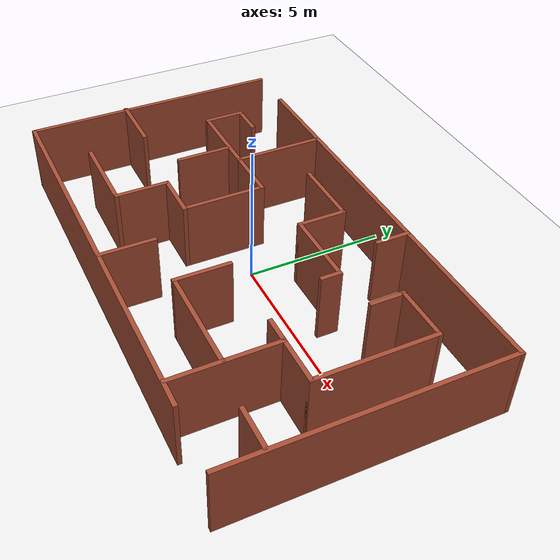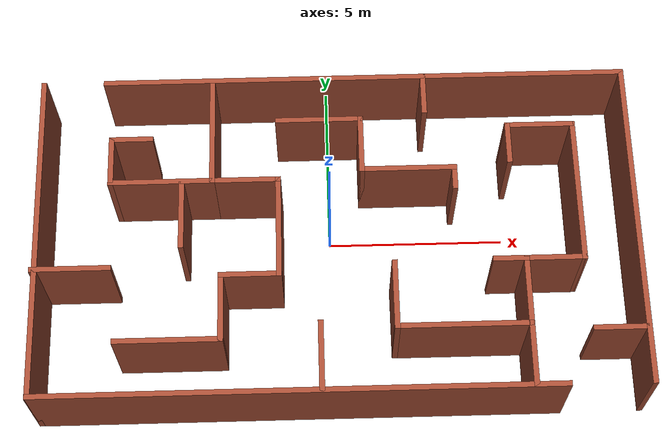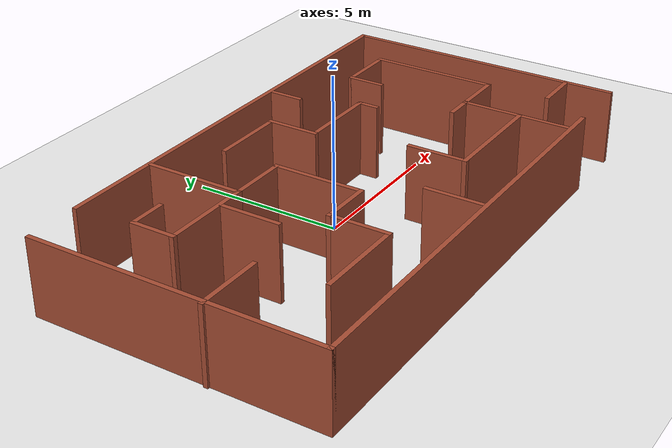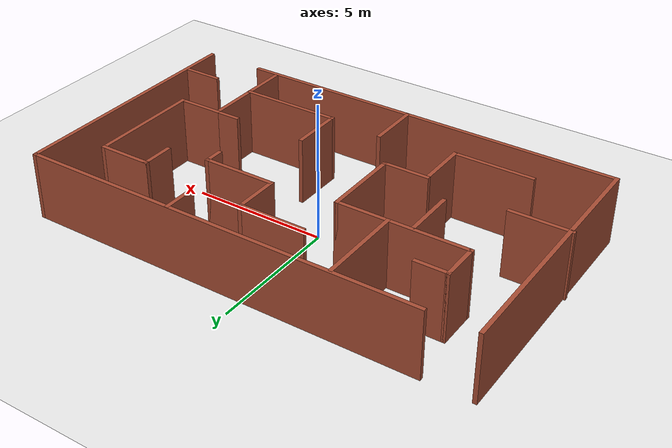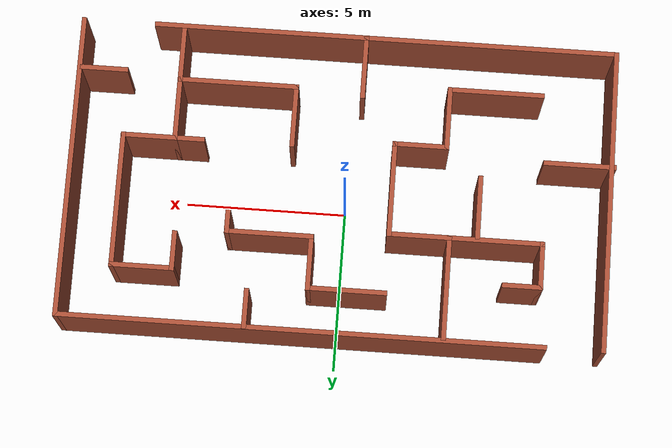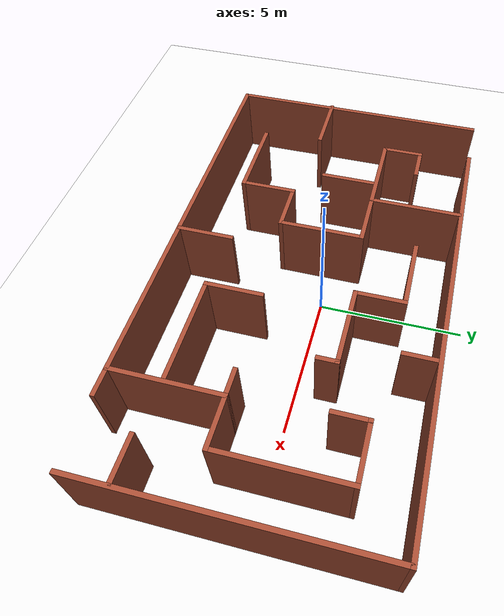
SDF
<sdf version="1.7">
 <world name="default">
  <model name="ground_plane">
   <static>1</static>
   <link name="link">
    <collision name="collision">
     <geometry><plane><normal>0 0 1</normal><size>100 100</size></plane></geometry>
     <surface><friction><ode><mu>100</mu><mu2>50</mu2></ode></friction></surface>
    </collision>
    <visual name="visual">
     <cast_shadows>0</cast_shadows>
     <geometry><plane><normal>0 0 1</normal><size>100 100</size></plane></geometry>
     <material>
      <script><uri>file://media/materials/scripts/gazebo.material</uri><name>Gazebo/White</name></script>
     </material>
    </visual>
   </link>
  </model>
  <light name="sun" type="directional">
   <pose>0 0 10 0 -0 0</pose>
   <diffuse>0.8 0.8 0.8 1</diffuse>
   <specular>0.2 0.2 0.2 1</specular>
   <attenuation>
    <range>1000</range>
    <constant>0.9</constant>
    <linear>0.01</linear>
    <quadratic>0.001</quadratic>
   </attenuation>
   <direction>-0.5 0.1 -0.9</direction>
   <spot><inner_angle>0</inner_angle><outer_angle>0</outer_angle><falloff>0</falloff></spot>
  </light>
  <scene><shadows>0</shadows><ambient>0.4 0.4 0.4 1</ambient><background>0.7 0.7 0.7 1</background></scene>
  <physics type="ode">
   <real_time_update_rate>1000</real_time_update_rate>
   <max_step_size>0.001</max_step_size>
   <real_time_factor>1</real_time_factor>
   <ode>
    <solver>
     <type>quick</type>
     <iters>150</iters>
     <precon_iters>0</precon_iters>
     <sor>1.4</sor>
     <use_dynamic_moi_rescaling>1</use_dynamic_moi_rescaling>
    </solver>
    <constraints>
     <cfm>1e-05</cfm>
     <erp>0.2</erp>
     <contact_max_correcting_vel>2000</contact_max_correcting_vel>
     <contact_surface_layer>0.01</contact_surface_layer>
    </constraints>
   </ode>
  </physics>
  <gravity>0 0 -9.8</gravity>
  <magnetic_field>6e-06 2.3e-05 -4.2e-05</magnetic_field>
  <atmosphere type="adiabatic"/>
  <spherical_coordinates>
   <surface_model>EARTH_WGS84</surface_model>
   <latitude_deg>0</latitude_deg>
   <longitude_deg>0</longitude_deg>
   <elevation>0</elevation>
   <heading_deg>0</heading_deg>
  </spherical_coordinates>
  <model name="maze">
   <pose>0.16041 -0.466092 0 0 -0 0</pose>
   <link name="Wall_31">
    <collision name="Wall_31_Collision">
     <geometry><box><size>9.5 0.15 2.5</size></box></geometry>
     <pose>0 0 1.25 0 -0 0</pose>
    </collision>
    <visual name="Wall_31_Visual">
     <pose>0 0 1.25 0 -0 0</pose>
     <geometry><box><size>9.5 0.15 2.5</size></box></geometry>
     <material>
      <script><uri>file://media/materials/scripts/gazebo.material</uri><name>Gazebo/Bricks</name></script>
      <ambient>1 1 1 1</ambient>
     </material>
     <meta><layer>0</layer></meta>
    </visual>
    <pose>-8.28533 -0.00999 0 0 -0 -1.5708</pose>
   </link>
   <link name="Wall_32">
    <collision name="Wall_32_Collision">
     <geometry><box><size>14.5 0.15 2.5</size></box></geometry>
     <pose>0 0 1.25 0 -0 0</pose>
    </collision>
    <visual name="Wall_32_Visual">
     <pose>0 0 1.25 0 -0 0</pose>
     <geometry><box><size>14.5 0.15 2.5</size></box></geometry>
     <material>
      <script><uri>file://media/materials/scripts/gazebo.material</uri><name>Gazebo/Bricks</name></script>
      <ambient>1 1 1 1</ambient>
     </material>
     <meta><layer>0</layer></meta>
    </visual>
    <pose>-1.11033 -4.68499 0 0 -0 0</pose>
   </link>
   <link name="Wall_34">
    <collision name="Wall_34_Collision">
     <geometry><box><size>9.5 0.15 2.5</size></box></geometry>
     <pose>0 0 1.25 0 -0 0</pose>
    </collision>
    <visual name="Wall_34_Visual">
     <pose>0 0 1.25 0 -0 0</pose>
     <geometry><box><size>9.5 0.15 2.5</size></box></geometry>
     <material>
      <script><uri>file://media/materials/scripts/gazebo.material</uri><name>Gazebo/Bricks</name></script>
      <ambient>1 1 1 1</ambient>
     </material>
     <meta><layer>0</layer></meta>
    </visual>
    <pose>8.35575 0.00999 0 0 -0 1.5708</pose>
   </link>
   <link name="Wall_35">
    <collision name="Wall_35_Collision">
     <geometry><box><size>15 0.15 2.5</size></box></geometry>
     <pose>0 0 1.25 0 -0 0</pose>
    </collision>
    <visual name="Wall_35_Visual">
     <pose>0 0 1.25 0 -0 0</pose>
     <geometry><box><size>15 0.15 2.5</size></box></geometry>
     <material>
      <script><uri>file://media/materials/scripts/gazebo.material</uri><name>Gazebo/Bricks</name></script>
      <ambient>1 1 1 1</ambient>
     </material>
     <meta><layer>0</layer></meta>
    </visual>
    <pose>0.930752 4.68499 0 0 -0 3.14159</pose>
   </link>
   <link name="Wall_37">
    <collision name="Wall_37_Collision">
     <geometry><box><size>3.75 0.15 2.5</size></box></geometry>
     <pose>0 0 1.25 0 -0 0</pose>
    </collision>
    <visual name="Wall_37_Visual">
     <pose>0 0 1.25 0 -0 0</pose>
     <geometry><box><size>3.75 0.15 2.5</size></box></geometry>
     <material>
      <script><uri>file://media/materials/scripts/gazebo.material</uri><name>Gazebo/Bricks</name></script>
      <ambient>1 1 1 1</ambient>
     </material>
     <meta><layer>0</layer></meta>
    </visual>
    <pose>5.20496 -2.86501 0 0 -0 1.5708</pose>
   </link>
   <link name="Wall_38">
    <collision name="Wall_38_Collision">
     <geometry><box><size>1.75 0.15 2.5</size></box></geometry>
     <pose>0 0 1.25 0 -0 0</pose>
    </collision>
    <visual name="Wall_38_Visual">
     <pose>0 0 1.25 0 -0 0</pose>
     <geometry><box><size>1.75 0.15 2.5</size></box></geometry>
     <material>
      <script><uri>file://media/materials/scripts/gazebo.material</uri><name>Gazebo/Bricks</name></script>
      <ambient>1 1 1 1</ambient>
     </material>
     <meta><layer>0</layer></meta>
    </visual>
    <pose>6.00496 -1.06501 0 0 -0 0</pose>
   </link>
   <link name="Wall_39">
    <collision name="Wall_39_Collision">
     <geometry><box><size>4.25 0.15 2.5</size></box></geometry>
     <pose>0 0 1.25 0 -0 0</pose>
    </collision>
    <visual name="Wall_39_Visual">
     <pose>0 0 1.25 0 -0 0</pose>
     <geometry><box><size>4.25 0.15 2.5</size></box></geometry>
     <material>
      <script><uri>file://media/materials/scripts/gazebo.material</uri><name>Gazebo/Bricks</name></script>
      <ambient>1 1 1 1</ambient>
     </material>
     <meta><layer>0</layer></meta>
    </visual>
    <pose>6.80496 0.98499 0 0 -0 1.5708</pose>
   </link>
   <link name="Wall_40">
    <collision name="Wall_40_Collision">
     <geometry><box><size>2 0.15 2.5</size></box></geometry>
     <pose>0 0 1.25 0 -0 0</pose>
    </collision>
    <visual name="Wall_40_Visual">
     <pose>0 0 1.25 0 -0 0</pose>
     <geometry><box><size>2 0.15 2.5</size></box></geometry>
     <material>
      <script><uri>file://media/materials/scripts/gazebo.material</uri><name>Gazebo/Bricks</name></script>
      <ambient>1 1 1 1</ambient>
     </material>
     <meta><layer>0</layer></meta>
    </visual>
    <pose>5.87996 3.03499 0 0 -0 3.14159</pose>
   </link>
   <link name="Wall_41">
    <collision name="Wall_41_Collision">
     <geometry><box><size>1.25 0.15 2.5</size></box></geometry>
     <pose>0 0 1.25 0 -0 0</pose>
    </collision>
    <visual name="Wall_41_Visual">
     <pose>0 0 1.25 0 -0 0</pose>
     <geometry><box><size>1.25 0.15 2.5</size></box></geometry>
     <material>
      <script><uri>file://media/materials/scripts/gazebo.material</uri><name>Gazebo/Bricks</name></script>
      <ambient>1 1 1 1</ambient>
     </material>
     <meta><layer>0</layer></meta>
    </visual>
    <pose>4.95496 2.48499 0 0 -0 -1.5708</pose>
   </link>
   <link name="Wall_45">
    <collision name="Wall_45_Collision">
     <geometry><box><size>1 0.15 2.5</size></box></geometry>
     <pose>0 0 1.25 0 -0 0</pose>
    </collision>
    <visual name="Wall_45_Visual">
     <pose>0 0 1.25 0 -0 0</pose>
     <geometry><box><size>1 0.15 2.5</size></box></geometry>
     <material>
      <script><uri>file://media/materials/scripts/gazebo.material</uri><name>Gazebo/Bricks</name></script>
      <ambient>1 1 1 1</ambient>
     </material>
     <meta><layer>0</layer></meta>
    </visual>
    <pose>4.77996 -1.06501 0 0 -0 3.14159</pose>
   </link>
   <link name="Wall_47">
    <collision name="Wall_47_Collision">
     <geometry><box><size>1.25 0.15 2.5</size></box></geometry>
     <pose>0 0 1.25 0 -0 0</pose>
    </collision>
    <visual name="Wall_47_Visual">
     <pose>0 0 1.25 0 -0 0</pose>
     <geometry><box><size>1.25 0.15 2.5</size></box></geometry>
     <material>
      <script><uri>file://media/materials/scripts/gazebo.material</uri><name>Gazebo/Bricks</name></script>
      <ambient>1 1 1 1</ambient>
     </material>
     <meta><layer>0</layer></meta>
    </visual>
    <pose>2.6209 4.11871 0 0 -0 -1.5708</pose>
   </link>
   <link name="Wall_49">
    <collision name="Wall_49_Collision">
     <geometry><box><size>3.25 0.15 2.5</size></box></geometry>
     <pose>0 0 1.25 0 -0 0</pose>
    </collision>
    <visual name="Wall_49_Visual">
     <pose>0 0 1.25 0 -0 0</pose>
     <geometry><box><size>3.25 0.15 2.5</size></box></geometry>
     <material>
      <script><uri>file://media/materials/scripts/gazebo.material</uri><name>Gazebo/Bricks</name></script>
      <ambient>1 1 1 1</ambient>
     </material>
     <meta><layer>0</layer></meta>
    </visual>
    <pose>-3.43472 3.05359 0 0 -0 -1.5708</pose>
   </link>
   <link name="Wall_50">
    <collision name="Wall_50_Collision">
     <geometry><box><size>3 0.15 2.5</size></box></geometry>
     <pose>0 0 1.25 0 -0 0</pose>
    </collision>
    <visual name="Wall_50_Visual">
     <pose>0 0 1.25 0 -0 0</pose>
     <geometry><box><size>3 0.15 2.5</size></box></geometry>
     <material>
      <script><uri>file://media/materials/scripts/gazebo.material</uri><name>Gazebo/Bricks</name></script>
      <ambient>1 1 1 1</ambient>
     </material>
     <meta><layer>0</layer></meta>
    </visual>
    <pose>-4.85972 1.50359 0 0 -0 3.14159</pose>
   </link>
   <link name="Wall_51">
    <collision name="Wall_51_Collision">
     <geometry><box><size>1.5 0.15 2.5</size></box></geometry>
     <pose>0 0 1.25 0 -0 0</pose>
    </collision>
    <visual name="Wall_51_Visual">
     <pose>0 0 1.25 0 -0 0</pose>
     <geometry><box><size>1.5 0.15 2.5</size></box></geometry>
     <material>
      <script><uri>file://media/materials/scripts/gazebo.material</uri><name>Gazebo/Bricks</name></script>
      <ambient>1 1 1 1</ambient>
     </material>
     <meta><layer>0</layer></meta>
    </visual>
    <pose>-6.28472 2.17859 0 0 -0 1.5708</pose>
   </link>
   <link name="Wall_52">
    <collision name="Wall_52_Collision">
     <geometry><box><size>1.25 0.15 2.5</size></box></geometry>
     <pose>0 0 1.25 0 -0 0</pose>
    </collision>
    <visual name="Wall_52_Visual">
     <pose>0 0 1.25 0 -0 0</pose>
     <geometry><box><size>1.25 0.15 2.5</size></box></geometry>
     <material>
      <script><uri>file://media/materials/scripts/gazebo.material</uri><name>Gazebo/Bricks</name></script>
      <ambient>1 1 1 1</ambient>
     </material>
     <meta><layer>0</layer></meta>
    </visual>
    <pose>-5.73472 2.85359 0 0 -0 0</pose>
   </link>
   <link name="Wall_54">
    <collision name="Wall_54_Collision">
     <geometry><box><size>2 0.15 2.5</size></box></geometry>
     <pose>0 0 1.25 0 -0 0</pose>
    </collision>
    <visual name="Wall_54_Visual">
     <pose>0 0 1.25 0 -0 0</pose>
     <geometry><box><size>2 0.15 2.5</size></box></geometry>
     <material>
      <script><uri>file://media/materials/scripts/gazebo.material</uri><name>Gazebo/Bricks</name></script>
      <ambient>1 1 1 1</ambient>
     </material>
     <meta><layer>0</layer></meta>
    </visual>
    <pose>-2.50972 1.50359 0 0 -0 0</pose>
   </link>
   <link name="Wall_55">
    <collision name="Wall_55_Collision">
     <geometry><box><size>3 0.15 2.5</size></box></geometry>
     <pose>0 0 1.25 0 -0 0</pose>
    </collision>
    <visual name="Wall_55_Visual">
     <pose>0 0 1.25 0 -0 0</pose>
     <geometry><box><size>3 0.15 2.5</size></box></geometry>
     <material>
      <script><uri>file://media/materials/scripts/gazebo.material</uri><name>Gazebo/Bricks</name></script>
      <ambient>1 1 1 1</ambient>
     </material>
     <meta><layer>0</layer></meta>
    </visual>
    <pose>-1.58472 0.078589 0 0 -0 -1.5708</pose>
   </link>
   <link name="Wall_56">
    <collision name="Wall_56_Collision">
     <geometry><box><size>1.75 0.15 2.5</size></box></geometry>
     <pose>0 0 1.25 0 -0 0</pose>
    </collision>
    <visual name="Wall_56_Visual">
     <pose>0 0 1.25 0 -0 0</pose>
     <geometry><box><size>1.75 0.15 2.5</size></box></geometry>
     <material>
      <script><uri>file://media/materials/scripts/gazebo.material</uri><name>Gazebo/Bricks</name></script>
      <ambient>1 1 1 1</ambient>
     </material>
     <meta><layer>0</layer></meta>
    </visual>
    <pose>-2.38472 -1.34641 0 0 -0 3.14159</pose>
   </link>
   <link name="Wall_57">
    <collision name="Wall_57_Collision">
     <geometry><box><size>2 0.15 2.5</size></box></geometry>
     <pose>0 0 1.25 0 -0 0</pose>
    </collision>
    <visual name="Wall_57_Visual">
     <pose>0 0 1.25 0 -0 0</pose>
     <geometry><box><size>2 0.15 2.5</size></box></geometry>
     <material>
      <script><uri>file://media/materials/scripts/gazebo.material</uri><name>Gazebo/Bricks</name></script>
      <ambient>1 1 1 1</ambient>
     </material>
     <meta><layer>0</layer></meta>
    </visual>
    <pose>-3.18472 -2.27141 0 0 -0 -1.5708</pose>
   </link>
   <link name="Wall_58">
    <collision name="Wall_58_Collision">
     <geometry><box><size>3 0.15 2.5</size></box></geometry>
     <pose>0 0 1.25 0 -0 0</pose>
    </collision>
    <visual name="Wall_58_Visual">
     <pose>0 0 1.25 0 -0 0</pose>
     <geometry><box><size>3 0.15 2.5</size></box></geometry>
     <material>
      <script><uri>file://media/materials/scripts/gazebo.material</uri><name>Gazebo/Bricks</name></script>
      <ambient>1 1 1 1</ambient>
     </material>
     <meta><layer>0</layer></meta>
    </visual>
    <pose>-4.60972 -3.19641 0 0 -0 3.14159</pose>
   </link>
   <link name="Wall_60">
    <collision name="Wall_60_Collision">
     <geometry><box><size>2.25 0.15 2.5</size></box></geometry>
     <pose>0 0 1.25 0 -0 0</pose>
    </collision>
    <visual name="Wall_60_Visual">
     <pose>0 0 1.25 0 -0 0</pose>
     <geometry><box><size>2.25 0.15 2.5</size></box></geometry>
     <material>
      <script><uri>file://media/materials/scripts/gazebo.material</uri><name>Gazebo/Bricks</name></script>
      <ambient>1 1 1 1</ambient>
     </material>
     <meta><layer>0</layer></meta>
    </visual>
    <pose>-7.30575 -1.06225 0 0 -0 0</pose>
   </link>
   <link name="Wall_62">
    <collision name="Wall_62_Collision">
     <geometry><box><size>2 0.15 2.5</size></box></geometry>
     <pose>0 0 1.25 0 -0 0</pose>
    </collision>
    <visual name="Wall_62_Visual">
     <pose>0 0 1.25 0 -0 0</pose>
     <geometry><box><size>2 0.15 2.5</size></box></geometry>
     <material>
      <script><uri>file://media/materials/scripts/gazebo.material</uri><name>Gazebo/Bricks</name></script>
      <ambient>1 1 1 1</ambient>
     </material>
     <meta><layer>0</layer></meta>
    </visual>
    <pose>-4.28592 0.486565 0 0 -0 -1.5708</pose>
   </link>
   <link name="Wall_64">
    <collision name="Wall_64_Collision">
     <geometry><box><size>2 0.15 2.5</size></box></geometry>
     <pose>0 0 1.25 0 -0 0</pose>
    </collision>
    <visual name="Wall_64_Visual">
     <pose>0 0 1.25 0 -0 0</pose>
     <geometry><box><size>2 0.15 2.5</size></box></geometry>
     <material>
      <script><uri>file://media/materials/scripts/gazebo.material</uri><name>Gazebo/Bricks</name></script>
      <ambient>1 1 1 1</ambient>
     </material>
     <meta><layer>0</layer></meta>
    </visual>
    <pose>-0.482095 -3.72828 0 0 -0 1.5708</pose>
   </link>
   <link name="Wall_66">
    <collision name="Wall_66_Collision">
     <geometry><box><size>3.75 0.15 2.5</size></box></geometry>
     <pose>0 0 1.25 0 -0 0</pose>
    </collision>
    <visual name="Wall_66_Visual">
     <pose>0 0 1.25 0 -0 0</pose>
     <geometry><box><size>3.75 0.15 2.5</size></box></geometry>
     <material>
      <script><uri>file://media/materials/scripts/gazebo.material</uri><name>Gazebo/Bricks</name></script>
      <ambient>1 1 1 1</ambient>
     </material>
     <meta><layer>0</layer></meta>
    </visual>
    <pose>3.38375 -2.95087 0 0 -0 3.14159</pose>
   </link>
   <link name="Wall_67">
    <collision name="Wall_67_Collision">
     <geometry><box><size>2 0.15 2.5</size></box></geometry>
     <pose>0 0 1.25 0 -0 0</pose>
    </collision>
    <visual name="Wall_67_Visual">
     <pose>0 0 1.25 0 -0 0</pose>
     <geometry><box><size>2 0.15 2.5</size></box></geometry>
     <material>
      <script><uri>file://media/materials/scripts/gazebo.material</uri><name>Gazebo/Bricks</name></script>
      <ambient>1 1 1 1</ambient>
     </material>
     <meta><layer>0</layer></meta>
    </visual>
    <pose>1.58375 -2.02587 0 0 -0 1.5708</pose>
   </link>
   <link name="Wall_69">
    <collision name="Wall_69_Collision">
     <geometry><box><size>1.5 0.15 2.5</size></box></geometry>
     <pose>0 0 1.25 0 -0 0</pose>
    </collision>
    <visual name="Wall_69_Visual">
     <pose>0 0 1.25 0 -0 0</pose>
     <geometry><box><size>1.5 0.15 2.5</size></box></geometry>
     <material>
      <script><uri>file://media/materials/scripts/gazebo.material</uri><name>Gazebo/Bricks</name></script>
      <ambient>1 1 1 1</ambient>
     </material>
     <meta><layer>0</layer></meta>
    </visual>
    <pose>7.59437 -3.13707 0 0 -0 3.14159</pose>
   </link>
   <link name="Wall_71">
    <collision name="Wall_71_Collision">
     <geometry><box><size>2.5 0.15 2.5</size></box></geometry>
     <pose>0 0 1.25 0 -0 0</pose>
    </collision>
    <visual name="Wall_71_Visual">
     <pose>0 0 1.25 0 -0 0</pose>
     <geometry><box><size>2.5 0.15 2.5</size></box></geometry>
     <material>
      <script><uri>file://media/materials/scripts/gazebo.material</uri><name>Gazebo/Bricks</name></script>
      <ambient>1 1 1 1</ambient>
     </material>
     <meta><layer>0</layer></meta>
    </visual>
    <pose>-0.397702 3.35338 0 0 -0 0</pose>
   </link>
   <link name="Wall_72">
    <collision name="Wall_72_Collision">
     <geometry><box><size>1.75 0.15 2.5</size></box></geometry>
     <pose>0 0 1.25 0 -0 0</pose>
    </collision>
    <visual name="Wall_72_Visual">
     <pose>0 0 1.25 0 -0 0</pose>
     <geometry><box><size>1.75 0.15 2.5</size></box></geometry>
     <material>
      <script><uri>file://media/materials/scripts/gazebo.material</uri><name>Gazebo/Bricks</name></script>
      <ambient>1 1 1 1</ambient>
     </material>
     <meta><layer>0</layer></meta>
    </visual>
    <pose>0.777297 2.55338 0 0 -0 -1.5708</pose>
   </link>
   <link name="Wall_73">
    <collision name="Wall_73_Collision">
     <geometry><box><size>2.75 0.15 2.5</size></box></geometry>
     <pose>0 0 1.25 0 -0 0</pose>
    </collision>
    <visual name="Wall_73_Visual">
     <pose>0 0 1.25 0 -0 0</pose>
     <geometry><box><size>2.75 0.15 2.5</size></box></geometry>
     <material>
      <script><uri>file://media/materials/scripts/gazebo.material</uri><name>Gazebo/Bricks</name></script>
      <ambient>1 1 1 1</ambient>
     </material>
     <meta><layer>0</layer></meta>
    </visual>
    <pose>2.0773 1.75338 0 0 -0 0</pose>
   </link>
   <link name="Wall_74">
    <collision name="Wall_74_Collision">
     <geometry><box><size>0.75 0.15 2.5</size></box></geometry>
     <pose>0 0 1.25 0 -0 0</pose>
    </collision>
    <visual name="Wall_74_Visual">
     <pose>0 0 1.25 0 -0 0</pose>
     <geometry><box><size>0.75 0.15 2.5</size></box></geometry>
     <material>
      <script><uri>file://media/materials/scripts/gazebo.material</uri><name>Gazebo/Bricks</name></script>
      <ambient>1 1 1 1</ambient>
     </material>
     <meta><layer>0</layer></meta>
    </visual>
    <pose>3.3773 1.45338 0 0 -0 -1.5708</pose>
   </link>
   <static>1</static>
  </model>
 </world>
</sdf>
